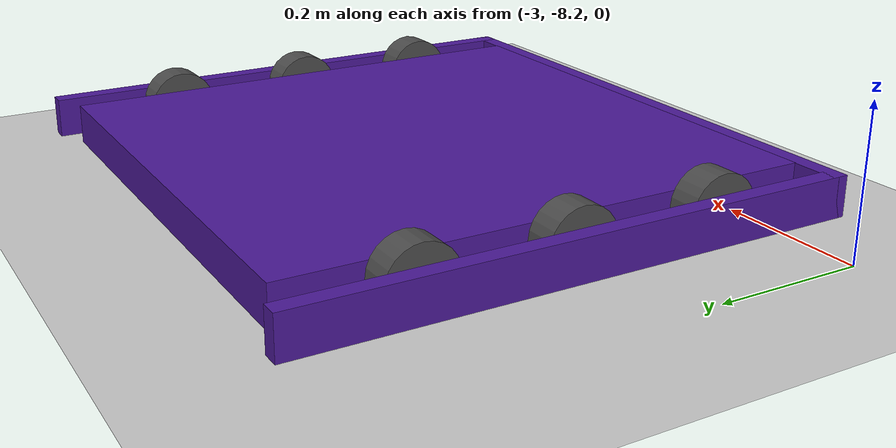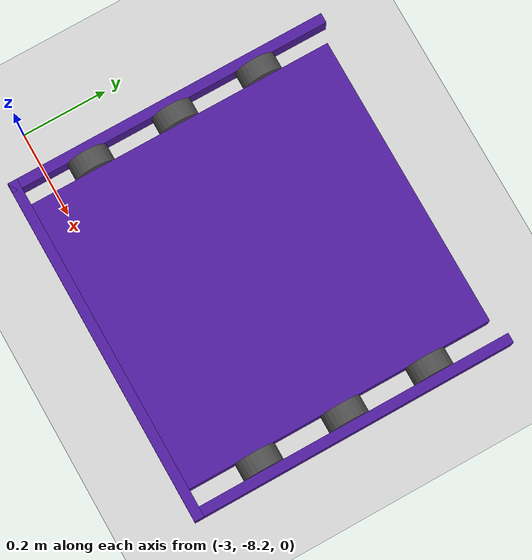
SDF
<sdf version="1.5">
 <world name="default">
  <physics type="ode">
   <max_step_size>0.002</max_step_size>
   <real_time_update_rate>500</real_time_update_rate>
  </physics>
  <include><uri>model://sun</uri></include>
  <include><uri>model://ground_plane</uri></include>
  <include><name>Hackbots</name><uri>model://3414_simple_2017</uri><pose>-2.5 -7.9 0 0 0 1.5708</pose></include>
  <scene><ambient>0.5 0.5 0.5 1</ambient><background>0.5 0.5 0.5 1</background><shadows>0</shadows></scene>
 </world>
</sdf>

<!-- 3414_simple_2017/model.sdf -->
<sdf version="1.5">
  <model name="3414_Hackbots_Simple">

    <!-- chassis assembly -->
    <link name="chassis">
      <pose>0 0 .04  0 0 0</pose>
      <inertial>
        <mass>54</mass>
        <inertia>
          <ixx>5.153</ixx>
          <ixy>0.07079</ixy>
          <ixz>12.46</ixz>
          <iyy>0.7343</iyy>
          <iyz>0.05588</iyz>
          <izz>0.9479</izz>
        </inertia>
      </inertial>
      <collision name="chassis_collision">
	<geometry>
	  <box>
	    <size>.72 .687 .055</size>
	  </box>
	</geometry>
      </collision>
      <visual name="chassis_visual">
	<geometry>
	  <box>
	    <size>.72 .687 .055</size>
	  </box>
	</geometry>
	<material>
	  <script>
	    <uri>file://media/materials/scripts/gazebo.material</uri>
	    <name>Gazebo/Indigo</name>
	  </script>
	</material>
        <cast_shadows>1</cast_shadows>
        <transparency>0</transparency>
      </visual>
      <collision name="chassis-left-bumper-collision">
	<pose>0 .396 0  0 0 0</pose>
	<geometry>
	  <box>
	    <size>.761 .023 .055</size>
	  </box>
	</geometry>
      </collision>
      <sensor name='chassisUltrasonic' type='sonar'>
        <always_on>1</always_on>
        <pose frame=''>-0.125 0.375 -0.085 1.5708 -0 0</pose>
        <sonar>
          <min>0</min>
          <max>2</max>
          <radius>0.1</radius>
        </sonar>
      </sensor>
      <visual name="chassis-left-bumper-visual">
	<pose>0 .396 0  0 0 0</pose>
	<geometry>
	  <box>
	    <size>.761 .023 .055</size>
	  </box>
	</geometry>
	<material>
	  <script>
	    <uri>file://media/materials/scripts/gazebo.material</uri>
	    <name>Gazebo/Indigo</name>
	  </script>
	</material>
      </visual>
      <collision name="chassis-right-bumper-collision">
	<pose>0 -0.396 0  0 0 0</pose>
	<geometry>
	  <box>
	    <size>.761 .023 .055</size>
	  </box>
	</geometry>
      </collision>
      <visual name="chassis-right-bumper-visual">
	<pose>0 -0.396 0  0 0 0</pose>
	<geometry>
	  <box>
	    <size>.761 .023 .055</size>
	  </box>
	</geometry>
	<material>
	  <script>
	    <uri>file://media/materials/scripts/gazebo.material</uri>
	    <name>Gazebo/Indigo</name>
	  </script>
	</material>
      </visual>
      <collision name="chassis-rear-bumper-collision">
	<pose>-.37 0 0  0 0 0</pose>
	<geometry>
	  <box>
	    <size>.023 .815 .055</size>
	  </box>
	</geometry>
      </collision>
      <visual name="chassis-rear-bumper-visual">
	<pose>-.37 0 0  0 0 0</pose>
	<geometry>
	  <box>
	    <size>.023 .815 .055</size>
	  </box>
	</geometry>
	<material>
	  <script>
	    <uri>file://media/materials/scripts/gazebo.material</uri>
	    <name>Gazebo/Indigo</name>
	  </script>
	</material>
      </visual>
    </link>

    <!-- Left side wheels -->
    <link name="left-front-wheel">
      <pose>.204 .364 .047  0 1.5707 1.5707</pose>
      <inertial>
        <mass>0.2329</mass>
      </inertial>
      <self_collide>0</self_collide>
      <kinematic>0</kinematic>
      <velocity_decay>
        <linear>0</linear>
        <angular>0</angular>
      </velocity_decay>
      <collision name="left-front-wheel-collision">
	<geometry>
	  <cylinder>
	    <radius>.047</radius>
	    <length>.041</length>
	  </cylinder>
	</geometry>
        <surface>
          <friction>
            <ode>
              <mu>1</mu>
              <mu2>1</mu2>
              <fdir1>0 0 0</fdir1>
              <slip1>0</slip1>
              <slip2>0</slip2>
            </ode>
          </friction>
          <bounce>
            <restitution_coefficient>0</restitution_coefficient>
            <threshold>1e+06</threshold>
          </bounce>
          <contact>
            <collide_without_contact>0</collide_without_contact>
            <collide_without_contact_bitmask>1</collide_without_contact_bitmask>
            <collide_bitmask>1</collide_bitmask>
            <ode>
              <soft_cfm>0</soft_cfm>
              <soft_erp>0.2</soft_erp>
              <kp>1e+13</kp>
              <kd>1</kd>
              <max_vel>0.01</max_vel>
              <min_depth>0</min_depth>
            </ode>
            <bullet>
              <split_impulse>1</split_impulse>
              <split_impulse_penetration_threshold>-0.01</split_impulse_penetration_threshold>
              <soft_cfm>0</soft_cfm>
              <soft_erp>0.2</soft_erp>
              <kp>1e+13</kp>
              <kd>1</kd>
            </bullet>
          </contact>
        </surface>
      </collision>
      <visual name="left-front-wheel-visual">
	<geometry>
	  <cylinder>
	    <radius>.047</radius>
	    <length>.041</length>
	  </cylinder>
	</geometry>
	<material>
	  <script>
	    <uri>file://media/materials/scripts/gazebo.material</uri>
	    <name>Gazebo/DarkGrey</name>
	  </script>
	</material>
      </visual>
    </link>
    <link name="left-middle-wheel">
      <pose>0 .364 .047  0 1.5707 1.5707</pose>
      <inertial>
        <mass>0.2329</mass>
      </inertial>
      <self_collide>0</self_collide>
      <kinematic>0</kinematic>
      <velocity_decay>
        <linear>0</linear>
        <angular>0</angular>
      </velocity_decay>
      <collision name="left-front-middle-wheel-collision">
	<geometry>
	  <cylinder>
	    <radius>.047</radius>
	    <length>.041</length>
	  </cylinder>
	</geometry>
        <surface>
          <friction>
            <ode>
              <mu>1</mu>
              <mu2>1</mu2>
              <fdir1>0 0 0</fdir1>
              <slip1>0</slip1>
              <slip2>0</slip2>
            </ode>
          </friction>
          <bounce>
            <restitution_coefficient>0</restitution_coefficient>
            <threshold>1e+06</threshold>
          </bounce>
          <contact>
            <collide_without_contact>0</collide_without_contact>
            <collide_without_contact_bitmask>1</collide_without_contact_bitmask>
            <collide_bitmask>1</collide_bitmask>
            <ode>
              <soft_cfm>0</soft_cfm>
              <soft_erp>0.2</soft_erp>
              <kp>1e+13</kp>
              <kd>1</kd>
              <max_vel>0.01</max_vel>
              <min_depth>0</min_depth>
            </ode>
            <bullet>
              <split_impulse>1</split_impulse>
              <split_impulse_penetration_threshold>-0.01</split_impulse_penetration_threshold>
              <soft_cfm>0</soft_cfm>
              <soft_erp>0.2</soft_erp>
              <kp>1e+13</kp>
              <kd>1</kd>
            </bullet>
          </contact>
        </surface>
      </collision>
      <visual name="left-middle-wheel-visual">
	<geometry>
	  <cylinder>
	    <radius>.047</radius>
	    <length>.041</length>
	  </cylinder>
	</geometry>
	<material>
	  <script>
	    <uri>file://media/materials/scripts/gazebo.material</uri>
	    <name>Gazebo/DarkGrey</name>
	  </script>
	</material>
      </visual>
    </link>
    <link name="left-rear-wheel">
      <pose>-.204 .364 .047  0 1.5707 1.5707</pose>
      <inertial>
        <mass>0.2329</mass>
      </inertial>
      <self_collide>0</self_collide>
      <kinematic>0</kinematic>
      <velocity_decay>
        <linear>0</linear>
        <angular>0</angular>
      </velocity_decay>
      <collision name="left-rear-middle-wheel-collision">
	<geometry>
	  <cylinder>
	    <radius>.047</radius>
	    <length>.041</length>
	  </cylinder>
	</geometry>
        <surface>
          <friction>
            <ode>
              <mu>1</mu>
              <mu2>1</mu2>
              <fdir1>0 0 0</fdir1>
              <slip1>0</slip1>
              <slip2>0</slip2>
            </ode>
          </friction>
          <bounce>
            <restitution_coefficient>0</restitution_coefficient>
            <threshold>1e+06</threshold>
          </bounce>
          <contact>
            <collide_without_contact>0</collide_without_contact>
            <collide_without_contact_bitmask>1</collide_without_contact_bitmask>
            <collide_bitmask>1</collide_bitmask>
            <ode>
              <soft_cfm>0</soft_cfm>
              <soft_erp>0.2</soft_erp>
              <kp>1e+13</kp>
              <kd>1</kd>
              <max_vel>0.01</max_vel>
              <min_depth>0</min_depth>
            </ode>
            <bullet>
              <split_impulse>1</split_impulse>
              <split_impulse_penetration_threshold>-0.01</split_impulse_penetration_threshold>
              <soft_cfm>0</soft_cfm>
              <soft_erp>0.2</soft_erp>
              <kp>1e+13</kp>
              <kd>1</kd>
            </bullet>
          </contact>
        </surface>
      </collision>
      <visual name="left-rear-wheel-visual">
	<geometry>
	  <cylinder>
	    <radius>.047</radius>
	    <length>.041</length>
	  </cylinder>
	</geometry>
	<material>
	  <script>
	    <uri>file://media/materials/scripts/gazebo.material</uri>
	    <name>Gazebo/DarkGrey</name>
	  </script>
	</material>
      </visual>
    </link>

    <!-- Right side wheels -->
    <link name="right-front-wheel">
      <pose>.204 -0.364 .047  0 1.5707 1.5707</pose>
      <inertial>
        <mass>0.2329</mass>
      </inertial>
      <self_collide>0</self_collide>
      <kinematic>0</kinematic>
      <velocity_decay>
        <linear>0</linear>
        <angular>0</angular>
      </velocity_decay>
      <collision name="right-front-wheel-collision">
	<geometry>
	  <cylinder>
	    <radius>.047</radius>
	    <length>.041</length>
	  </cylinder>
	</geometry>
        <surface>
          <friction>
            <ode>
              <mu>1</mu>
              <mu2>1</mu2>
              <fdir1>0 0 0</fdir1>
              <slip1>0</slip1>
              <slip2>0</slip2>
            </ode>
          </friction>
          <bounce>
            <restitution_coefficient>0</restitution_coefficient>
            <threshold>1e+06</threshold>
          </bounce>
          <contact>
            <collide_without_contact>0</collide_without_contact>
            <collide_without_contact_bitmask>1</collide_without_contact_bitmask>
            <collide_bitmask>1</collide_bitmask>
            <ode>
              <soft_cfm>0</soft_cfm>
              <soft_erp>0.2</soft_erp>
              <kp>1e+13</kp>
              <kd>1</kd>
              <max_vel>0.01</max_vel>
              <min_depth>0</min_depth>
            </ode>
            <bullet>
              <split_impulse>1</split_impulse>
              <split_impulse_penetration_threshold>-0.01</split_impulse_penetration_threshold>
              <soft_cfm>0</soft_cfm>
              <soft_erp>0.2</soft_erp>
              <kp>1e+13</kp>
              <kd>1</kd>
            </bullet>
          </contact>
        </surface>
      </collision>
      <visual name="right-front-wheel-visual">
	<geometry>
	  <cylinder>
	    <radius>.047</radius>
	    <length>.041</length>
	  </cylinder>
	</geometry>
	<material>
	  <script>
	    <uri>file://media/materials/scripts/gazebo.material</uri>
	    <name>Gazebo/DarkGrey</name>
	  </script>
	</material>
      </visual>
    </link>
    <link name="right-middle-wheel">
      <pose>0 -0.364 .047  0 1.5707 1.5707</pose>
      <inertial>
        <mass>0.2329</mass>
      </inertial>
      <self_collide>0</self_collide>
      <kinematic>0</kinematic>
      <velocity_decay>
        <linear>0</linear>
        <angular>0</angular>
      </velocity_decay>
      <collision name="right-middle-wheel-collision">
	<geometry>
	  <cylinder>
	    <radius>.047</radius>
	    <length>.041</length>
	  </cylinder>
	</geometry>
        <surface>
          <friction>
            <ode>
              <mu>1</mu>
              <mu2>1</mu2>
              <fdir1>0 0 0</fdir1>
              <slip1>0</slip1>
              <slip2>0</slip2>
            </ode>
          </friction>
          <bounce>
            <restitution_coefficient>0</restitution_coefficient>
            <threshold>1e+06</threshold>
          </bounce>
          <contact>
            <collide_without_contact>0</collide_without_contact>
            <collide_without_contact_bitmask>1</collide_without_contact_bitmask>
            <collide_bitmask>1</collide_bitmask>
            <ode>
              <soft_cfm>0</soft_cfm>
              <soft_erp>0.2</soft_erp>
              <kp>1e+13</kp>
              <kd>1</kd>
              <max_vel>0.01</max_vel>
              <min_depth>0</min_depth>
            </ode>
            <bullet>
              <split_impulse>1</split_impulse>
              <split_impulse_penetration_threshold>-0.01</split_impulse_penetration_threshold>
              <soft_cfm>0</soft_cfm>
              <soft_erp>0.2</soft_erp>
              <kp>1e+13</kp>
              <kd>1</kd>
            </bullet>
          </contact>
        </surface>
      </collision>
      <visual name="right-middle-wheel-visual">
	<geometry>
	  <cylinder>
	    <radius>.047</radius>
	    <length>.041</length>
	  </cylinder>
	</geometry>
	<material>
	  <script>
	    <uri>file://media/materials/scripts/gazebo.material</uri>
	    <name>Gazebo/DarkGrey</name>
	  </script>
	</material>
      </visual>
    </link>
    <link name="right-rear-wheel">
      <pose>-.204 -0.364 .047  0 1.5707 1.5707</pose>
      <inertial>
        <mass>0.2329</mass>
      </inertial>
      <self_collide>0</self_collide>
      <kinematic>0</kinematic>
      <velocity_decay>
        <linear>0</linear>
        <angular>0</angular>
      </velocity_decay>
      <collision name="right-rear-wheel-collision">
	<geometry>
	  <cylinder>
	    <radius>.047</radius>
	    <length>.041</length>
	  </cylinder>
	</geometry>
        <surface>
          <friction>
            <ode>
              <mu>1</mu>
              <mu2>1</mu2>
              <fdir1>0 0 0</fdir1>
              <slip1>0</slip1>
              <slip2>0</slip2>
            </ode>
          </friction>
          <bounce>
            <restitution_coefficient>0</restitution_coefficient>
            <threshold>1e+06</threshold>
          </bounce>
          <contact>
            <collide_without_contact>0</collide_without_contact>
            <collide_without_contact_bitmask>1</collide_without_contact_bitmask>
            <collide_bitmask>1</collide_bitmask>
            <ode>
              <soft_cfm>0</soft_cfm>
              <soft_erp>0.2</soft_erp>
              <kp>1e+13</kp>
              <kd>1</kd>
              <max_vel>0.01</max_vel>
              <min_depth>0</min_depth>
            </ode>
            <bullet>
              <split_impulse>1</split_impulse>
              <split_impulse_penetration_threshold>-0.01</split_impulse_penetration_threshold>
              <soft_cfm>0</soft_cfm>
              <soft_erp>0.2</soft_erp>
              <kp>1e+13</kp>
              <kd>1</kd>
            </bullet>
          </contact>
        </surface>
      </collision>
      <visual name="right-rear-wheel-visual">
	<geometry>
	  <cylinder>
	    <radius>.047</radius>
	    <length>.041</length>
	  </cylinder>
	</geometry>
	<material>
	  <script>
	    <uri>file://media/materials/scripts/gazebo.material</uri>
	    <name>Gazebo/DarkGrey</name>
	  </script>
	</material>
      </visual>
    </link>

    <!-- left wheel joint specifications -->
    <joint type="revolute" name="left-front-wheel-hinge-inner">
      <child>left-front-wheel</child>
      <parent>chassis</parent>
      <axis>
	<xyz>0 1 0</xyz>
        <use_parent_model_frame>1</use_parent_model_frame>
        <dynamics>
          <damping>2</damping>
          <friction>0.01</friction>
        </dynamics>
      </axis>
    </joint>
    <joint type="revolute" name="left-middle-wheel-hinge-inner">
      <child>left-middle-wheel</child>
      <parent>chassis</parent>
      <axis>
	<xyz>0 1 0</xyz>
        <use_parent_model_frame>1</use_parent_model_frame>
        <dynamics>
          <damping>2</damping>
          <friction>0.01</friction>
        </dynamics>
      </axis>
    </joint>
    <joint type="revolute" name="left-rear-wheel-hinge-inner">
      <child>left-rear-wheel</child>
      <parent>chassis</parent>
      <axis>
	<xyz>0 1 0</xyz>
        <use_parent_model_frame>1</use_parent_model_frame>
        <dynamics>
          <damping>2</damping>
          <friction>0.01</friction>
        </dynamics>
      </axis>
    </joint>

    <!-- right wheel joint specifications -->
    <joint type="revolute" name="right-front-wheel-hinge-inner">
      <child>right-front-wheel</child>
      <parent>chassis</parent>
      <axis>
	<xyz>0 1 0</xyz>
        <use_parent_model_frame>1</use_parent_model_frame>
        <dynamics>
          <damping>2</damping>
          <friction>0.01</friction>
        </dynamics>
      </axis>
    </joint>
    <joint type="revolute" name="right-middle-wheel-hinge-inner">
      <child>right-middle-wheel</child>
      <parent>chassis</parent>
      <axis>
	<xyz>0 1 0</xyz>
        <use_parent_model_frame>1</use_parent_model_frame>
        <dynamics>
          <damping>2</damping>
          <friction>0.01</friction>
        </dynamics>
      </axis>
    </joint>
    <joint type="revolute" name="right-rear-wheel-hinge-inner">
      <child>right-rear-wheel</child>
      <parent>chassis</parent>
      <axis>
	<xyz>0 1 0</xyz>
        <use_parent_model_frame>1</use_parent_model_frame>
        <dynamics>
          <damping>2</damping>
          <friction>0.01</friction>
        </dynamics>
      </axis>
    </joint>

    <!-- set up the .so files for control via Eclipse -->
        <allow_auto_disable>1</allow_auto_disable>
    <plugin name='clock' filename='libclock.so'>
      <topic>/gazebo/frc/time</topic>
    </plugin>
    <plugin name='left-front-wheel-motor' filename='libdc_motor.so'>
      <joint>left-front-wheel-hinge-inner</joint>
      <topic>/gazebo/frc/simulator/pwm/1</topic>
      <multiplier>25.0</multiplier>
    </plugin>
    <plugin name='left-middle-wheel-motor' filename='libdc_motor.so'>
      <joint>left-middle-wheel-hinge-inner</joint>
      <topic>/gazebo/frc/simulator/pwm/1</topic>
      <multiplier>25.0</multiplier>
    </plugin>
    <plugin name='left-rear-wheel-motor' filename='libdc_motor.so'>
      <joint>left-rear-wheel-hinge-inner</joint>
      <topic>/gazebo/frc/simulator/pwm/1</topic>
      <multiplier>25.0</multiplier>
    </plugin>
    <plugin name='right-front-wheel-motor' filename='libdc_motor.so'>
      <joint>right-front-wheel-hinge-inner</joint>
      <topic>/gazebo/frc/simulator/pwm/2</topic>
      <multiplier>-25.0</multiplier>
    </plugin>
    <plugin name='right-middle-wheel-motor' filename='libdc_motor.so'>
      <joint>right-middle-wheel-hinge-inner</joint>
      <topic>/gazebo/frc/simulator/pwm/2</topic>
      <multiplier>-25.0</multiplier>
    </plugin>
    <plugin name='right-rear-wheel-motor' filename='libdc_motor.so'>
      <joint>right-rear-wheel-hinge-inner</joint>
      <topic>/gazebo/frc/simulator/pwm/2</topic>
      <multiplier>-25.0</multiplier>
    </plugin>
    <plugin name='left-front-wheel-encoder' filename='libencoder.so'>
      <joint>left-front-wheel-hinge-inner</joint>
      <topic>/gazebo/frc/simulator/dio/1/2</topic>
      <units>degrees</units>
    </plugin>
    <plugin name='right-front-wheel-encoder' filename='libencoder.so'>
      <joint>right-front-wheel-hinge-inner</joint>
      <topic>/gazebo/frc/simulator/dio/3/4</topic>
      <units>degrees</units>
    </plugin>
    <plugin name='gyro' filename='libgyro.so'>
      <link>chassis</link>
      <topic>/gazebo/frc/simulator/analog/2</topic>
      <axis>yaw</axis>
      <units>degrees</units>
    </plugin>
    <plugin name='chassisUltrasonic_rangefinder' filename='librangefinder.so'>
      <sensor>chassisUltrasonic</sensor>
      <topic>/gazebo/frc/simulator/dio/5/6</topic>
    </plugin>

  </model>
</sdf>
